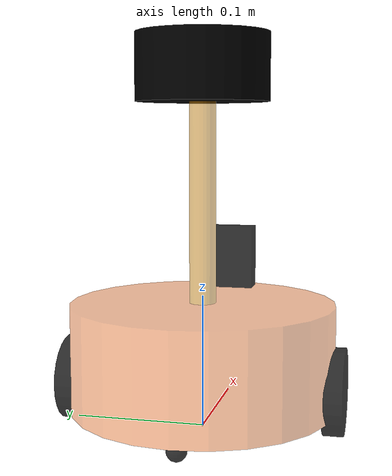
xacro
<?xml version="1.0"?>
<robot xmlns:xacro="http://www.ros.org/wiki/xacro" name="mycar">
    <!-- 包含惯性矩阵文件 -->

    <!-- 包含底盘、摄像头与雷达的 xacro 文件 -->
    <xacro:include filename="demo05_car_base.urdf.xacro"/>
    <xacro:include filename="demo06_car_camera.urdf.xacro"/>
    <xacro:include filename="demo07_car_laser.urdf.xacro"/>

</robot>

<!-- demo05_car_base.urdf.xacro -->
<robot xmlns:xacro="http://www.ros.org/wiki/xacro" name="mycar">

    <xacro:property name="footprint_radius" value="0.001" />

    <!-- 1、添加 base_footprint -->
    <link name="base_footprint">
        <visual>
            <geometry>
                <sphere radius="${footprint_radius}" />
            </geometry>
        </visual>
    </link>

    <!-- 2、添加底盘 -->
    <!--
        形状：圆柱
        半径：0.1m
        高度：0.08m
        离地距离：0.015m
     -->
    <xacro:property name="base_radius" value="0.1" />
    <xacro:property name="base_length" value="0.08" />
    <xacro:property name="lidi" value="0.015" />
    <xacro:property name="base_joint_z" value="${base_length / 2 + lidi}" />

    <!-- 2.1.link 底盘只有一个，无需复用 -->
    <link name="base_link">
       <visual>
            <geometry>
                <cylinder radius="0.1" length="0.08" />
            </geometry>
            <origin xyz="0 0 0" rpy="0 0 0 " />
            <material name="baselink_color">
               <color rgba="1.0 0.5 0.2 0.5" />
            </material>
       </visual>
    </link>

    <!-- 2.2.joint -->
    <joint name="link2footprint" type="fixed">
        <parent link="base_footprint"/>
        <child link="base_link"/>
        <!-- 关节 z 上的设置 = 车体高度/2 + 离地距离 -->
        <origin xyz="0 0 ${base_length / 2 + lidi}" rpy="0.0 0.0 0.0"/>
    </joint>

    <!-- 3、添加驱动轮 -->
    <!--
        形状：圆柱
        半径：0.0325m
        长度：0.015m
     -->

    <!-- 属性 -->
    <xacro:property name="wheel_radius" value="0.0325" />
    <xacro:property name="wheel_length" value="0.015" />
    <xacro:property name="PI" value="3.1415927" />
    <!-- 注意：结果是负数 -->
    <xacro:property name="wheel_joint_z" value="${ (base_length / 2 + lidi - wheel_radius) * -1 }" />

    <!--
        wheel_name: left 或 right
        flag：1 或 -1
     -->
    <xacro:macro name="wheel_func" params="wheel_name flag">

        <!-- 3.1、link -->
        <link name="${wheel_name}_wheel">
        <visual>
                <geometry>
                    <cylinder radius="${wheel_radius}" length="${wheel_length}" />
                </geometry>

                <origin xyz="0 0 0" rpy="${PI / 2} 0 0" />

                <material name="wheel_color">
                <color rgba="0 0 0 0.8" />
                </material>
        </visual>
        </link>
        <!-- 3.2、joint -->
        <joint name="${wheel_name}_wheel_joint" type="continuous">
            <parent link="base_link"/>
            <child link="${wheel_name}_wheel"/>
            <!--
                x 无偏移
                y 车体半径
                z 等于车体高度 / 2 + 离地间距 - 车轮半径
            -->
            <origin xyz="0.0 ${0.1 * flag} ${wheel_joint_z}" rpy="0.0 0.0 0.0"/>
            <axis xyz="0.0 1.0 0.0"/>
        </joint>
    </xacro:macro>

    <xacro:wheel_func wheel_name="base_l" flag="1" />
    <xacro:wheel_func wheel_name="base_r" flag="-1" />

    <!-- 4、添加万象轮 -->
    <!--
        形状：球
        半径：0.0075m
     -->

    <xacro:property name="small_wheel_radius" value="0.0075" />

    <!-- z的偏移量 = 车体高度/2 + 离地间距 - 万向轮车轮半径 -->
    <xacro:property name="small_joint_z" value="${(base_length / 2 + lidi - small_wheel_radius) * -1}" />

    <xacro:macro name="small_wheel_func" params="small_wheel_name flag">
        <!-- 4.1、link -->
        <link name="${small_wheel_name}_wheel">
            <visual>
                    <geometry>
                        <sphere radius="${small_wheel_radius}" />
                    </geometry>
                    <origin xyz="0 0 0" rpy="0 0 0" />
                    <material name="wheel_color">
                    <color rgba="0 0 0 0.8" />
                    </material>
            </visual>
        </link>

        <!-- 4.2、joint -->
        <joint name="${small_wheel_name}2link" type="continuous">
            <parent link="base_link"/>
            <child link="${small_wheel_name}_wheel"/>
            <origin xyz="${0.08 * flag} 0 ${small_joint_z}" rpy="0.0 0.0 0.0"/>
            <axis xyz="0 1 0"/>
        </joint>
    </xacro:macro>

    <xacro:small_wheel_func small_wheel_name="front" flag="1" />
    <xacro:small_wheel_func small_wheel_name="back" flag="-1" />

</robot>

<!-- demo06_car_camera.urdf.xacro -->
<robot xmlns:xacro="http://www.ros.org/wiki/xacro" name="mycar">
    <!-- 摄像头部件 -->
    <!-- 1.参数 -->
    <!--
        参数：
            连杆属性：厚度、宽度、高度
            关节属性：x y z
     -->

    <!-- 厚度(x) -->
    <xacro:property name="camera_length" value="0.02" />

    <!-- 宽度(y) -->
    <xacro:property name="camera_width" value="0.05" />

    <!-- 高度(z) -->
    <xacro:property name="camera_height" value="0.05" />

    <xacro:property name="joint_camera_x" value="0.08" />
    <xacro:property name="joint_camera_y" value="0" />
    <xacro:property name="joint_camera_z" value="${base_length / 2 + camera_height / 2}" />

    <!-- 2.设计连杆和关节 -->
    <link name="camera">
        <visual>
            <geometry>
                <box size="${camera_length} ${camera_width} ${camera_height}"/>
            </geometry>
            <origin xyz="0.0 0.0 0.0" rpy="0.0 0.0 0.0"/>
            <material name="black">
            <color rgba="0 0.0 0.0 0.8"/>
            </material>
        </visual>
    </link>

    <joint name="camera2base" type="fixed">
        <parent link="base_link"/>
        <child link="camera"/>
        <origin xyz="${joint_camera_x} ${joint_camera_y} ${joint_camera_z}" rpy="0.0 0.0 0.0"/>

    </joint>

</robot>

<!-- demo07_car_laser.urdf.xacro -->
<robot xmlns:xacro="http://www.ros.org/wiki/xacro" name="mycar">
    <!-- 雷达部件 -->
    <!-- 参数 -->
    <!--
        1、支架
            支架尺寸：半径 高度
            关节偏移量： x y z
        2、雷达
            雷达尺寸：半径 高度
            关节偏移量： x y z
     -->
    <xacro:property name="support_radius" value="0.01" />
    <xacro:property name="support_length" value="0.15" />
    <xacro:property name="laser_radius" value="0.05" />
    <xacro:property name="laser_length" value="0.05" />

    <xacro:property name="joint_support_x" value="0" />
    <xacro:property name="joint_support_y" value="0" />
    <!-- z = 车体高度 / 2 + 支架高度 / 2 -->
    <xacro:property name="joint_support_z" value="${base_length / 2 + support_length / 2}" />

    <xacro:property name="joint_laser_x" value="0" />
    <xacro:property name="joint_laser_y" value="0" />
    <!-- z = 支架高度 / 2 + 雷达高度 / 2 -->
    <xacro:property name="joint_laser_z" value="${support_length / 2 + laser_length / 2}" />

    <!-- 1、支架 -->
    <link name="support">
        <visual>
            <geometry>
                <cylinder radius="${support_radius}" length="${support_length}"/>
            </geometry>
            <origin xyz="0.0 0.0 0.0" rpy="0.0 0.0 0.0"/>
            <material name="yellow">
                <color rgba="0.8 0.5 0.0 0.5"/>
            </material>
        </visual>
    </link>
    <joint name="support2base" type="fixed">
        <origin xyz="${joint_support_x} ${joint_support_y} ${joint_support_z}" rpy="0.0 0.0 0.0"/>
        <parent link="base_link"/>
        <child link="support"/>
        <axis xyz="0.0 0.0 0.0"/>
    </joint>

    <!-- 2、雷达 -->
    <link name="laser">
        <visual>
            <geometry>
                <cylinder radius="${laser_radius}" length="${laser_length}"/>
            </geometry>
            <origin xyz="0.0 0.0 0.0" rpy="0.0 0.0 0.0"/>
            <material name="black">
                <color rgba="0 0 0 1"/>
            </material>
        </visual>
    </link>
    <joint name="laser2support" type="fixed">
        <origin xyz="${joint_laser_x} ${joint_laser_y} ${joint_laser_z}" rpy="0.0 0.0 0.0"/>
        <parent link="support"/>
        <child link="laser"/>
        <axis xyz="0.0 0.0 0.0"/>
    </joint>

</robot>
